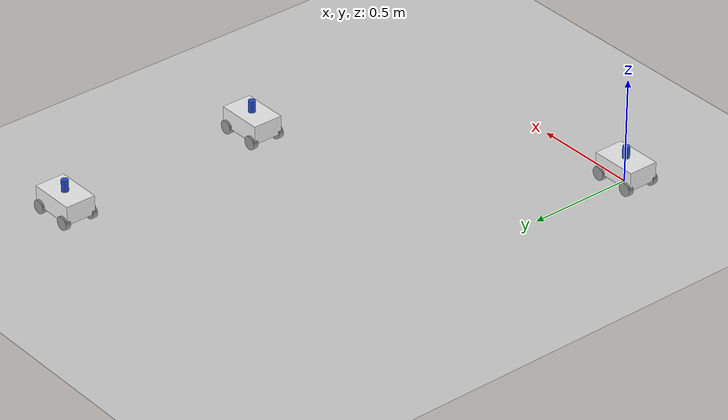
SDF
<sdf version="1.6">
 <world name="default">
  <model name="ground_plane">
   <static>1</static>
   <link name="link">
    <collision name="collision">
     <geometry><plane><normal>0 0 1</normal><size>100 100</size></plane></geometry>
     <surface>
      <contact><collide_bitmask>65535</collide_bitmask></contact>
      <friction><ode><mu>100</mu><mu2>50</mu2></ode></friction>
     </surface>
    </collision>
    <visual name="visual">
     <cast_shadows>0</cast_shadows>
     <geometry><plane><normal>0 0 1</normal><size>100 100</size></plane></geometry>
     <material>
      <script><uri>file://media/materials/scripts/gazebo.material</uri><name>Gazebo/Grey</name></script>
     </material>
    </visual>
   </link>
  </model>
  <model name="Robot3">
   <link name="base_link">
    <inertial>
     <mass>0.7</mass>
     <inertia>
      <ixx>0.00169896</ixx>
      <ixy>0</ixy>
      <ixz>0</ixz>
      <iyy>0.00329583</iyy>
      <iyz>0</iyz>
      <izz>0.00404979</izz>
     </inertia>
    </inertial>
    <collision name="base_link_collision"><geometry><box><size>0.22 0.145 0.09</size></box></geometry></collision>
    <collision name="base_link_fixed_joint_lump__ydlidar_link_collision_1">
     <pose>0 0 0.0725 0 -0 0</pose>
     <geometry><cylinder><length>0.055</length><radius>0.0165</radius></cylinder></geometry>
    </collision>
    <visual name="base_link_visual">
     <geometry><box><size>0.22 0.145 0.09</size></box></geometry>
     <material>
      <script><name>Gazebo/White</name><uri>file://media/materials/scripts/gazebo.material</uri></script>
     </material>
    </visual>
    <visual name="base_link_fixed_joint_lump__ydlidar_link_visual_1">
     <pose>0 0 0.0725 0 -0 0</pose>
     <geometry><cylinder><length>0.055</length><radius>0.0165</radius></cylinder></geometry>
     <material>
      <script><name>Gazebo/Blue</name><uri>file://media/materials/scripts/gazebo.material</uri></script>
     </material>
    </visual>
    <sensor name="camera" type="camera">
     <camera name="head">
      <horizontal_fov>1.39626</horizontal_fov>
      <image><width>800</width><height>800</height><format>R8G8B8</format></image>
      <clip><near>0.02</near><far>300</far></clip>
     </camera>
     <always_on>1</always_on>
     <update_rate>30</update_rate>
     <visualize>1</visualize>
     <plugin name="camera_controller" filename="libgazebo_ros_camera.so">
      <alwaysOn>1</alwaysOn>
      <updateRate>0.0</updateRate>
      <cameraName>iris/camera</cameraName>
      <imageTopicName>image_raw</imageTopicName>
      <cameraInfoTopicName>camera_info</cameraInfoTopicName>
      <frameName>camera_link</frameName>
      <hackBaseline>0.07</hackBaseline>
      <distortionK1>0.0</distortionK1>
      <distortionK2>0.0</distortionK2>
      <distortionK3>0.0</distortionK3>
      <distortionT1>0.0</distortionT1>
      <distortionT2>0.0</distortionT2>
      <robotNamespace>Robot3</robotNamespace>
     </plugin>
     <pose>0 0 0.0725 0 -0 0</pose>
    </sensor>
   </link>
   <link name="back_left_wheel">
    <pose>-0.0825 0.07 -0.045 0 -0 0</pose>
    <inertial>
     <mass>0.03</mass>
     <inertia>
      <ixx>9.2425e-06</ixx>
      <ixy>0</ixy>
      <ixz>0</ixz>
      <iyy>9.2425e-06</iyy>
      <iyz>0</iyz>
      <izz>1.536e-05</izz>
     </inertia>
    </inertial>
    <collision name="back_left_wheel_collision">
     <pose>0 0 0 1.5708 -0 0</pose>
     <geometry><cylinder><length>0.025</length><radius>0.032</radius></cylinder></geometry>
     <surface>
      <contact><ode><kp>1e+07</kp><kd>1</kd></ode></contact>
      <friction><ode><mu>1</mu><mu2>1</mu2><fdir1>1 0 0</fdir1></ode></friction>
     </surface>
    </collision>
    <visual name="back_left_wheel_visual">
     <pose>0 0 0 1.5708 -0 0</pose>
     <geometry><cylinder><length>0.025</length><radius>0.032</radius></cylinder></geometry>
     <material>
      <script><name>Gazebo/Grey</name><uri>file://media/materials/scripts/gazebo.material</uri></script>
     </material>
    </visual>
   </link>
   <joint name="back_left_wheel_joint" type="revolute">
    <child>back_left_wheel</child>
    <parent>base_link</parent>
    <axis>
     <xyz>0 1 0</xyz>
     <limit><lower>-1e+16</lower><upper>1e+16</upper></limit>
     <dynamics><spring_reference>0</spring_reference><spring_stiffness>0</spring_stiffness></dynamics>
     <use_parent_model_frame>1</use_parent_model_frame>
    </axis>
   </joint>
   <link name="back_right_wheel">
    <pose>-0.0825 -0.07 -0.045 0 -0 0</pose>
    <inertial>
     <mass>0.03</mass>
     <inertia>
      <ixx>9.2425e-06</ixx>
      <ixy>0</ixy>
      <ixz>0</ixz>
      <iyy>9.2425e-06</iyy>
      <iyz>0</iyz>
      <izz>1.536e-05</izz>
     </inertia>
    </inertial>
    <collision name="back_right_wheel_collision">
     <pose>0 0 0 1.5708 -0 0</pose>
     <geometry><cylinder><length>0.025</length><radius>0.032</radius></cylinder></geometry>
     <surface>
      <contact><ode><kp>1e+07</kp><kd>1</kd></ode></contact>
      <friction><ode><mu>1</mu><mu2>1</mu2><fdir1>1 0 0</fdir1></ode></friction>
     </surface>
    </collision>
    <visual name="back_right_wheel_visual">
     <pose>0 0 0 1.5708 -0 0</pose>
     <geometry><cylinder><length>0.025</length><radius>0.032</radius></cylinder></geometry>
     <material>
      <script><name>Gazebo/Grey</name><uri>file://media/materials/scripts/gazebo.material</uri></script>
     </material>
    </visual>
   </link>
   <joint name="back_right_wheel_joint" type="revolute">
    <child>back_right_wheel</child>
    <parent>base_link</parent>
    <axis>
     <xyz>0 1 0</xyz>
     <limit><lower>-1e+16</lower><upper>1e+16</upper></limit>
     <dynamics><spring_reference>0</spring_reference><spring_stiffness>0</spring_stiffness></dynamics>
     <use_parent_model_frame>1</use_parent_model_frame>
    </axis>
   </joint>
   <link name="front_left_wheel">
    <pose>0.0825 0.07 -0.045 0 -0 0</pose>
    <inertial>
     <mass>0.03</mass>
     <inertia>
      <ixx>9.2425e-06</ixx>
      <ixy>0</ixy>
      <ixz>0</ixz>
      <iyy>9.2425e-06</iyy>
      <iyz>0</iyz>
      <izz>1.536e-05</izz>
     </inertia>
    </inertial>
    <collision name="front_left_wheel_collision">
     <pose>0 0 0 1.5708 -0 0</pose>
     <geometry><cylinder><length>0.025</length><radius>0.032</radius></cylinder></geometry>
     <surface>
      <contact><ode><kp>1e+07</kp><kd>1</kd></ode></contact>
      <friction><ode><mu>1</mu><mu2>1</mu2><fdir1>1 0 0</fdir1></ode></friction>
     </surface>
    </collision>
    <visual name="front_left_wheel_visual">
     <pose>0 0 0 1.5708 -0 0</pose>
     <geometry><cylinder><length>0.025</length><radius>0.032</radius></cylinder></geometry>
     <material>
      <script><name>Gazebo/Grey</name><uri>file://media/materials/scripts/gazebo.material</uri></script>
     </material>
    </visual>
   </link>
   <joint name="front_left_wheel_joint" type="revolute">
    <child>front_left_wheel</child>
    <parent>base_link</parent>
    <axis>
     <xyz>0 1 0</xyz>
     <limit><lower>-1e+16</lower><upper>1e+16</upper></limit>
     <dynamics><spring_reference>0</spring_reference><spring_stiffness>0</spring_stiffness></dynamics>
     <use_parent_model_frame>1</use_parent_model_frame>
    </axis>
   </joint>
   <link name="front_right_wheel">
    <pose>0.0825 -0.07 -0.045 0 -0 0</pose>
    <inertial>
     <mass>0.03</mass>
     <inertia>
      <ixx>9.2425e-06</ixx>
      <ixy>0</ixy>
      <ixz>0</ixz>
      <iyy>9.2425e-06</iyy>
      <iyz>0</iyz>
      <izz>1.536e-05</izz>
     </inertia>
    </inertial>
    <collision name="front_right_wheel_collision">
     <pose>0 0 0 1.5708 -0 0</pose>
     <geometry><cylinder><length>0.025</length><radius>0.032</radius></cylinder></geometry>
     <surface>
      <contact><ode><kp>1e+07</kp><kd>1</kd></ode></contact>
      <friction><ode><mu>1</mu><mu2>1</mu2><fdir1>1 0 0</fdir1></ode></friction>
     </surface>
    </collision>
    <visual name="front_right_wheel_visual">
     <pose>0 0 0 1.5708 -0 0</pose>
     <geometry><cylinder><length>0.025</length><radius>0.032</radius></cylinder></geometry>
     <material>
      <script><name>Gazebo/Grey</name><uri>file://media/materials/scripts/gazebo.material</uri></script>
     </material>
    </visual>
   </link>
   <joint name="front_right_wheel_joint" type="revolute">
    <child>front_right_wheel</child>
    <parent>base_link</parent>
    <axis>
     <xyz>0 1 0</xyz>
     <limit><lower>-1e+16</lower><upper>1e+16</upper></limit>
     <dynamics><spring_reference>0</spring_reference><spring_stiffness>0</spring_stiffness></dynamics>
     <use_parent_model_frame>1</use_parent_model_frame>
    </axis>
   </joint>
   <static>0</static>
   <plugin name="skid_steer_drive_controller" filename="libgazebo_ros_skid_steer_drive.so">
    <rosDebugLevel>Debug</rosDebugLevel>
    <publishWheelTF>0</publishWheelTF>
    <publishTf>1</publishTf>
    <publishWheelJointState>0</publishWheelJointState>
    <alwaysOn>1</alwaysOn>
    <updateRate>100.0</updateRate>
    <leftFrontJoint>front_left_wheel_joint</leftFrontJoint>
    <rightFrontJoint>front_right_wheel_joint</rightFrontJoint>
    <leftRearJoint>back_left_wheel_joint</leftRearJoint>
    <rightRearJoint>back_right_wheel_joint</rightRearJoint>
    <wheelSeparation>0.145</wheelSeparation>
    <wheelDiameter>0.064</wheelDiameter>
    <broadcastTF>1</broadcastTF>
    <wheelTorque>2</wheelTorque>
    <wheelAcceleration>1.8</wheelAcceleration>
    <commandTopic>cmd_vel</commandTopic>
    <odometryFrame>odom</odometryFrame>
    <odometryTopic>odom</odometryTopic>
    <robotBaseFrame>base_footprint</robotBaseFrame>
    <robotNamespace>Robot3</robotNamespace>
   </plugin>
   <plugin name="imu_plugin" filename="libgazebo_ros_imu.so">
    <alwaysOn>1</alwaysOn>
    <bodyName>base_link</bodyName>
    <topicName>imu</topicName>
    <serviceName>imu_service</serviceName>
    <gaussianNoise>0.0</gaussianNoise>
    <updateRate>20.0</updateRate>
    <robotNamespace>Robot3</robotNamespace>
   </plugin>
   <pose>1.29586 0.999946 0.077 0 -0 0.000628</pose>
  </model>
  <model name="Robot4">
   <link name="base_link">
    <inertial>
     <mass>0.7</mass>
     <inertia>
      <ixx>0.00169896</ixx>
      <ixy>0</ixy>
      <ixz>0</ixz>
      <iyy>0.00329583</iyy>
      <iyz>0</iyz>
      <izz>0.00404979</izz>
     </inertia>
    </inertial>
    <collision name="base_link_collision"><geometry><box><size>0.22 0.145 0.09</size></box></geometry></collision>
    <collision name="base_link_fixed_joint_lump__ydlidar_link_collision_1">
     <pose>0 0 0.0725 0 -0 0</pose>
     <geometry><cylinder><length>0.055</length><radius>0.0165</radius></cylinder></geometry>
    </collision>
    <visual name="base_link_visual">
     <geometry><box><size>0.22 0.145 0.09</size></box></geometry>
     <material>
      <script><name>Gazebo/White</name><uri>file://media/materials/scripts/gazebo.material</uri></script>
     </material>
    </visual>
    <visual name="base_link_fixed_joint_lump__ydlidar_link_visual_1">
     <pose>0 0 0.0725 0 -0 0</pose>
     <geometry><cylinder><length>0.055</length><radius>0.0165</radius></cylinder></geometry>
     <material>
      <script><name>Gazebo/Blue</name><uri>file://media/materials/scripts/gazebo.material</uri></script>
     </material>
    </visual>
    <sensor name="camera" type="camera">
     <camera name="head">
      <horizontal_fov>1.39626</horizontal_fov>
      <image><width>800</width><height>800</height><format>R8G8B8</format></image>
      <clip><near>0.02</near><far>300</far></clip>
     </camera>
     <always_on>1</always_on>
     <update_rate>30</update_rate>
     <visualize>1</visualize>
     <plugin name="camera_controller" filename="libgazebo_ros_camera.so">
      <alwaysOn>1</alwaysOn>
      <updateRate>0.0</updateRate>
      <cameraName>iris/camera</cameraName>
      <imageTopicName>image_raw</imageTopicName>
      <cameraInfoTopicName>camera_info</cameraInfoTopicName>
      <frameName>camera_link</frameName>
      <hackBaseline>0.07</hackBaseline>
      <distortionK1>0.0</distortionK1>
      <distortionK2>0.0</distortionK2>
      <distortionK3>0.0</distortionK3>
      <distortionT1>0.0</distortionT1>
      <distortionT2>0.0</distortionT2>
      <robotNamespace>Robot4</robotNamespace>
     </plugin>
     <pose>0 0 0.0725 0 -0 0</pose>
    </sensor>
   </link>
   <link name="back_left_wheel">
    <pose>-0.0825 0.07 -0.045 0 -0 0</pose>
    <inertial>
     <mass>0.03</mass>
     <inertia>
      <ixx>9.2425e-06</ixx>
      <ixy>0</ixy>
      <ixz>0</ixz>
      <iyy>9.2425e-06</iyy>
      <iyz>0</iyz>
      <izz>1.536e-05</izz>
     </inertia>
    </inertial>
    <collision name="back_left_wheel_collision">
     <pose>0 0 0 1.5708 -0 0</pose>
     <geometry><cylinder><length>0.025</length><radius>0.032</radius></cylinder></geometry>
     <surface>
      <contact><ode><kp>1e+07</kp><kd>1</kd></ode></contact>
      <friction><ode><mu>1</mu><mu2>1</mu2><fdir1>1 0 0</fdir1></ode></friction>
     </surface>
    </collision>
    <visual name="back_left_wheel_visual">
     <pose>0 0 0 1.5708 -0 0</pose>
     <geometry><cylinder><length>0.025</length><radius>0.032</radius></cylinder></geometry>
     <material>
      <script><name>Gazebo/Grey</name><uri>file://media/materials/scripts/gazebo.material</uri></script>
     </material>
    </visual>
   </link>
   <joint name="back_left_wheel_joint" type="revolute">
    <child>back_left_wheel</child>
    <parent>base_link</parent>
    <axis>
     <xyz>0 1 0</xyz>
     <limit><lower>-1e+16</lower><upper>1e+16</upper></limit>
     <dynamics><spring_reference>0</spring_reference><spring_stiffness>0</spring_stiffness></dynamics>
     <use_parent_model_frame>1</use_parent_model_frame>
    </axis>
   </joint>
   <link name="back_right_wheel">
    <pose>-0.0825 -0.07 -0.045 0 -0 0</pose>
    <inertial>
     <mass>0.03</mass>
     <inertia>
      <ixx>9.2425e-06</ixx>
      <ixy>0</ixy>
      <ixz>0</ixz>
      <iyy>9.2425e-06</iyy>
      <iyz>0</iyz>
      <izz>1.536e-05</izz>
     </inertia>
    </inertial>
    <collision name="back_right_wheel_collision">
     <pose>0 0 0 1.5708 -0 0</pose>
     <geometry><cylinder><length>0.025</length><radius>0.032</radius></cylinder></geometry>
     <surface>
      <contact><ode><kp>1e+07</kp><kd>1</kd></ode></contact>
      <friction><ode><mu>1</mu><mu2>1</mu2><fdir1>1 0 0</fdir1></ode></friction>
     </surface>
    </collision>
    <visual name="back_right_wheel_visual">
     <pose>0 0 0 1.5708 -0 0</pose>
     <geometry><cylinder><length>0.025</length><radius>0.032</radius></cylinder></geometry>
     <material>
      <script><name>Gazebo/Grey</name><uri>file://media/materials/scripts/gazebo.material</uri></script>
     </material>
    </visual>
   </link>
   <joint name="back_right_wheel_joint" type="revolute">
    <child>back_right_wheel</child>
    <parent>base_link</parent>
    <axis>
     <xyz>0 1 0</xyz>
     <limit><lower>-1e+16</lower><upper>1e+16</upper></limit>
     <dynamics><spring_reference>0</spring_reference><spring_stiffness>0</spring_stiffness></dynamics>
     <use_parent_model_frame>1</use_parent_model_frame>
    </axis>
   </joint>
   <link name="front_left_wheel">
    <pose>0.0825 0.07 -0.045 0 -0 0</pose>
    <inertial>
     <mass>0.03</mass>
     <inertia>
      <ixx>9.2425e-06</ixx>
      <ixy>0</ixy>
      <ixz>0</ixz>
      <iyy>9.2425e-06</iyy>
      <iyz>0</iyz>
      <izz>1.536e-05</izz>
     </inertia>
    </inertial>
    <collision name="front_left_wheel_collision">
     <pose>0 0 0 1.5708 -0 0</pose>
     <geometry><cylinder><length>0.025</length><radius>0.032</radius></cylinder></geometry>
     <surface>
      <contact><ode><kp>1e+07</kp><kd>1</kd></ode></contact>
      <friction><ode><mu>1</mu><mu2>1</mu2><fdir1>1 0 0</fdir1></ode></friction>
     </surface>
    </collision>
    <visual name="front_left_wheel_visual">
     <pose>0 0 0 1.5708 -0 0</pose>
     <geometry><cylinder><length>0.025</length><radius>0.032</radius></cylinder></geometry>
     <material>
      <script><name>Gazebo/Grey</name><uri>file://media/materials/scripts/gazebo.material</uri></script>
     </material>
    </visual>
   </link>
   <joint name="front_left_wheel_joint" type="revolute">
    <child>front_left_wheel</child>
    <parent>base_link</parent>
    <axis>
     <xyz>0 1 0</xyz>
     <limit><lower>-1e+16</lower><upper>1e+16</upper></limit>
     <dynamics><spring_reference>0</spring_reference><spring_stiffness>0</spring_stiffness></dynamics>
     <use_parent_model_frame>1</use_parent_model_frame>
    </axis>
   </joint>
   <link name="front_right_wheel">
    <pose>0.0825 -0.07 -0.045 0 -0 0</pose>
    <inertial>
     <mass>0.03</mass>
     <inertia>
      <ixx>9.2425e-06</ixx>
      <ixy>0</ixy>
      <ixz>0</ixz>
      <iyy>9.2425e-06</iyy>
      <iyz>0</iyz>
      <izz>1.536e-05</izz>
     </inertia>
    </inertial>
    <collision name="front_right_wheel_collision">
     <pose>0 0 0 1.5708 -0 0</pose>
     <geometry><cylinder><length>0.025</length><radius>0.032</radius></cylinder></geometry>
     <surface>
      <contact><ode><kp>1e+07</kp><kd>1</kd></ode></contact>
      <friction><ode><mu>1</mu><mu2>1</mu2><fdir1>1 0 0</fdir1></ode></friction>
     </surface>
    </collision>
    <visual name="front_right_wheel_visual">
     <pose>0 0 0 1.5708 -0 0</pose>
     <geometry><cylinder><length>0.025</length><radius>0.032</radius></cylinder></geometry>
     <material>
      <script><name>Gazebo/Grey</name><uri>file://media/materials/scripts/gazebo.material</uri></script>
     </material>
    </visual>
   </link>
   <joint name="front_right_wheel_joint" type="revolute">
    <child>front_right_wheel</child>
    <parent>base_link</parent>
    <axis>
     <xyz>0 1 0</xyz>
     <limit><lower>-1e+16</lower><upper>1e+16</upper></limit>
     <dynamics><spring_reference>0</spring_reference><spring_stiffness>0</spring_stiffness></dynamics>
     <use_parent_model_frame>1</use_parent_model_frame>
    </axis>
   </joint>
   <static>0</static>
   <plugin name="skid_steer_drive_controller" filename="libgazebo_ros_skid_steer_drive.so">
    <rosDebugLevel>Debug</rosDebugLevel>
    <publishWheelTF>0</publishWheelTF>
    <publishTf>1</publishTf>
    <publishWheelJointState>0</publishWheelJointState>
    <alwaysOn>1</alwaysOn>
    <updateRate>100.0</updateRate>
    <leftFrontJoint>front_left_wheel_joint</leftFrontJoint>
    <rightFrontJoint>front_right_wheel_joint</rightFrontJoint>
    <leftRearJoint>back_left_wheel_joint</leftRearJoint>
    <rightRearJoint>back_right_wheel_joint</rightRearJoint>
    <wheelSeparation>0.145</wheelSeparation>
    <wheelDiameter>0.064</wheelDiameter>
    <broadcastTF>1</broadcastTF>
    <wheelTorque>2</wheelTorque>
    <wheelAcceleration>1.8</wheelAcceleration>
    <commandTopic>cmd_vel</commandTopic>
    <odometryFrame>odom</odometryFrame>
    <odometryTopic>odom</odometryTopic>
    <robotBaseFrame>base_footprint</robotBaseFrame>
    <robotNamespace>Robot4</robotNamespace>
   </plugin>
   <plugin name="imu_plugin" filename="libgazebo_ros_imu.so">
    <alwaysOn>1</alwaysOn>
    <bodyName>base_link</bodyName>
    <topicName>imu</topicName>
    <serviceName>imu_service</serviceName>
    <gaussianNoise>0.0</gaussianNoise>
    <updateRate>20.0</updateRate>
    <robotNamespace>Robot4</robotNamespace>
   </plugin>
   <pose>1.29587 1.99995 0.077 0 -0 0.000628</pose>
  </model>
  <model name="Robot1">
   <link name="base_link">
    <inertial>
     <mass>0.7</mass>
     <inertia>
      <ixx>0.00169896</ixx>
      <ixy>0</ixy>
      <ixz>0</ixz>
      <iyy>0.00329583</iyy>
      <iyz>0</iyz>
      <izz>0.00404979</izz>
     </inertia>
    </inertial>
    <collision name="base_link_collision"><geometry><box><size>0.22 0.145 0.09</size></box></geometry></collision>
    <collision name="base_link_fixed_joint_lump__ydlidar_link_collision_1">
     <pose>0 0 0.0725 0 -0 0</pose>
     <geometry><cylinder><length>0.055</length><radius>0.0165</radius></cylinder></geometry>
    </collision>
    <visual name="base_link_visual">
     <geometry><box><size>0.22 0.145 0.09</size></box></geometry>
     <material>
      <script><name>Gazebo/White</name><uri>file://media/materials/scripts/gazebo.material</uri></script>
     </material>
    </visual>
    <visual name="base_link_fixed_joint_lump__ydlidar_link_visual_1">
     <pose>0 0 0.0725 0 -0 0</pose>
     <geometry><cylinder><length>0.055</length><radius>0.0165</radius></cylinder></geometry>
     <material>
      <script><name>Gazebo/Blue</name><uri>file://media/materials/scripts/gazebo.material</uri></script>
     </material>
    </visual>
    <sensor name="camera" type="camera">
     <camera name="head">
      <horizontal_fov>1.39626</horizontal_fov>
      <image><width>800</width><height>800</height><format>R8G8B8</format></image>
      <clip><near>0.02</near><far>300</far></clip>
     </camera>
     <always_on>1</always_on>
     <update_rate>30</update_rate>
     <visualize>1</visualize>
     <plugin name="camera_controller" filename="libgazebo_ros_camera.so">
      <alwaysOn>1</alwaysOn>
      <updateRate>0.0</updateRate>
      <cameraName>iris/camera</cameraName>
      <imageTopicName>image_raw</imageTopicName>
      <cameraInfoTopicName>camera_info</cameraInfoTopicName>
      <frameName>camera_link</frameName>
      <hackBaseline>0.07</hackBaseline>
      <distortionK1>0.0</distortionK1>
      <distortionK2>0.0</distortionK2>
      <distortionK3>0.0</distortionK3>
      <distortionT1>0.0</distortionT1>
      <distortionT2>0.0</distortionT2>
      <robotNamespace>Robot1</robotNamespace>
     </plugin>
     <pose>0 0 0.0725 0 -0 0</pose>
    </sensor>
   </link>
   <link name="back_left_wheel">
    <pose>-0.0825 0.07 -0.045 0 -0 0</pose>
    <inertial>
     <mass>0.03</mass>
     <inertia>
      <ixx>9.2425e-06</ixx>
      <ixy>0</ixy>
      <ixz>0</ixz>
      <iyy>9.2425e-06</iyy>
      <iyz>0</iyz>
      <izz>1.536e-05</izz>
     </inertia>
    </inertial>
    <collision name="back_left_wheel_collision">
     <pose>0 0 0 1.5708 -0 0</pose>
     <geometry><cylinder><length>0.025</length><radius>0.032</radius></cylinder></geometry>
     <surface>
      <contact><ode><kp>1e+07</kp><kd>1</kd></ode></contact>
      <friction><ode><mu>1</mu><mu2>1</mu2><fdir1>1 0 0</fdir1></ode></friction>
     </surface>
    </collision>
    <visual name="back_left_wheel_visual">
     <pose>0 0 0 1.5708 -0 0</pose>
     <geometry><cylinder><length>0.025</length><radius>0.032</radius></cylinder></geometry>
     <material>
      <script><name>Gazebo/Grey</name><uri>file://media/materials/scripts/gazebo.material</uri></script>
     </material>
    </visual>
   </link>
   <joint name="back_left_wheel_joint" type="revolute">
    <child>back_left_wheel</child>
    <parent>base_link</parent>
    <axis>
     <xyz>0 1 0</xyz>
     <limit><lower>-1e+16</lower><upper>1e+16</upper></limit>
     <dynamics><spring_reference>0</spring_reference><spring_stiffness>0</spring_stiffness></dynamics>
     <use_parent_model_frame>1</use_parent_model_frame>
    </axis>
   </joint>
   <link name="back_right_wheel">
    <pose>-0.0825 -0.07 -0.045 0 -0 0</pose>
    <inertial>
     <mass>0.03</mass>
     <inertia>
      <ixx>9.2425e-06</ixx>
      <ixy>0</ixy>
      <ixz>0</ixz>
      <iyy>9.2425e-06</iyy>
      <iyz>0</iyz>
      <izz>1.536e-05</izz>
     </inertia>
    </inertial>
    <collision name="back_right_wheel_collision">
     <pose>0 0 0 1.5708 -0 0</pose>
     <geometry><cylinder><length>0.025</length><radius>0.032</radius></cylinder></geometry>
     <surface>
      <contact><ode><kp>1e+07</kp><kd>1</kd></ode></contact>
      <friction><ode><mu>1</mu><mu2>1</mu2><fdir1>1 0 0</fdir1></ode></friction>
     </surface>
    </collision>
    <visual name="back_right_wheel_visual">
     <pose>0 0 0 1.5708 -0 0</pose>
     <geometry><cylinder><length>0.025</length><radius>0.032</radius></cylinder></geometry>
     <material>
      <script><name>Gazebo/Grey</name><uri>file://media/materials/scripts/gazebo.material</uri></script>
     </material>
    </visual>
   </link>
   <joint name="back_right_wheel_joint" type="revolute">
    <child>back_right_wheel</child>
    <parent>base_link</parent>
    <axis>
     <xyz>0 1 0</xyz>
     <limit><lower>-1e+16</lower><upper>1e+16</upper></limit>
     <dynamics><spring_reference>0</spring_reference><spring_stiffness>0</spring_stiffness></dynamics>
     <use_parent_model_frame>1</use_parent_model_frame>
    </axis>
   </joint>
   <link name="front_left_wheel">
    <pose>0.0825 0.07 -0.045 0 -0 0</pose>
    <inertial>
     <mass>0.03</mass>
     <inertia>
      <ixx>9.2425e-06</ixx>
      <ixy>0</ixy>
      <ixz>0</ixz>
      <iyy>9.2425e-06</iyy>
      <iyz>0</iyz>
      <izz>1.536e-05</izz>
     </inertia>
    </inertial>
    <collision name="front_left_wheel_collision">
     <pose>0 0 0 1.5708 -0 0</pose>
     <geometry><cylinder><length>0.025</length><radius>0.032</radius></cylinder></geometry>
     <surface>
      <contact><ode><kp>1e+07</kp><kd>1</kd></ode></contact>
      <friction><ode><mu>1</mu><mu2>1</mu2><fdir1>1 0 0</fdir1></ode></friction>
     </surface>
    </collision>
    <visual name="front_left_wheel_visual">
     <pose>0 0 0 1.5708 -0 0</pose>
     <geometry><cylinder><length>0.025</length><radius>0.032</radius></cylinder></geometry>
     <material>
      <script><name>Gazebo/Grey</name><uri>file://media/materials/scripts/gazebo.material</uri></script>
     </material>
    </visual>
   </link>
   <joint name="front_left_wheel_joint" type="revolute">
    <child>front_left_wheel</child>
    <parent>base_link</parent>
    <axis>
     <xyz>0 1 0</xyz>
     <limit><lower>-1e+16</lower><upper>1e+16</upper></limit>
     <dynamics><spring_reference>0</spring_reference><spring_stiffness>0</spring_stiffness></dynamics>
     <use_parent_model_frame>1</use_parent_model_frame>
    </axis>
   </joint>
   <link name="front_right_wheel">
    <pose>0.0825 -0.07 -0.045 0 -0 0</pose>
    <inertial>
     <mass>0.03</mass>
     <inertia>
      <ixx>9.2425e-06</ixx>
      <ixy>0</ixy>
      <ixz>0</ixz>
      <iyy>9.2425e-06</iyy>
      <iyz>0</iyz>
      <izz>1.536e-05</izz>
     </inertia>
    </inertial>
    <collision name="front_right_wheel_collision">
     <pose>0 0 0 1.5708 -0 0</pose>
     <geometry><cylinder><length>0.025</length><radius>0.032</radius></cylinder></geometry>
     <surface>
      <contact><ode><kp>1e+07</kp><kd>1</kd></ode></contact>
      <friction><ode><mu>1</mu><mu2>1</mu2><fdir1>1 0 0</fdir1></ode></friction>
     </surface>
    </collision>
    <visual name="front_right_wheel_visual">
     <pose>0 0 0 1.5708 -0 0</pose>
     <geometry><cylinder><length>0.025</length><radius>0.032</radius></cylinder></geometry>
     <material>
      <script><name>Gazebo/Grey</name><uri>file://media/materials/scripts/gazebo.material</uri></script>
     </material>
    </visual>
   </link>
   <joint name="front_right_wheel_joint" type="revolute">
    <child>front_right_wheel</child>
    <parent>base_link</parent>
    <axis>
     <xyz>0 1 0</xyz>
     <limit><lower>-1e+16</lower><upper>1e+16</upper></limit>
     <dynamics><spring_reference>0</spring_reference><spring_stiffness>0</spring_stiffness></dynamics>
     <use_parent_model_frame>1</use_parent_model_frame>
    </axis>
   </joint>
   <static>0</static>
   <plugin name="skid_steer_drive_controller" filename="libgazebo_ros_skid_steer_drive.so">
    <rosDebugLevel>Debug</rosDebugLevel>
    <publishWheelTF>0</publishWheelTF>
    <publishTf>1</publishTf>
    <publishWheelJointState>0</publishWheelJointState>
    <alwaysOn>1</alwaysOn>
    <updateRate>100.0</updateRate>
    <leftFrontJoint>front_left_wheel_joint</leftFrontJoint>
    <rightFrontJoint>front_right_wheel_joint</rightFrontJoint>
    <leftRearJoint>back_left_wheel_joint</leftRearJoint>
    <rightRearJoint>back_right_wheel_joint</rightRearJoint>
    <wheelSeparation>0.145</wheelSeparation>
    <wheelDiameter>0.064</wheelDiameter>
    <broadcastTF>1</broadcastTF>
    <wheelTorque>2</wheelTorque>
    <wheelAcceleration>1.8</wheelAcceleration>
    <commandTopic>cmd_vel</commandTopic>
    <odometryFrame>odom</odometryFrame>
    <odometryTopic>odom</odometryTopic>
    <robotBaseFrame>base_footprint</robotBaseFrame>
    <robotNamespace>Robot1</robotNamespace>
   </plugin>
   <plugin name="imu_plugin" filename="libgazebo_ros_imu.so">
    <alwaysOn>1</alwaysOn>
    <bodyName>base_link</bodyName>
    <topicName>imu</topicName>
    <serviceName>imu_service</serviceName>
    <gaussianNoise>0.0</gaussianNoise>
    <updateRate>20.0</updateRate>
    <robotNamespace>Robot1</robotNamespace>
   </plugin>
   <pose>-0.004112 -5.4e-05 0.077 0 -0 0.000628</pose>
  </model>
 </world>
</sdf>
